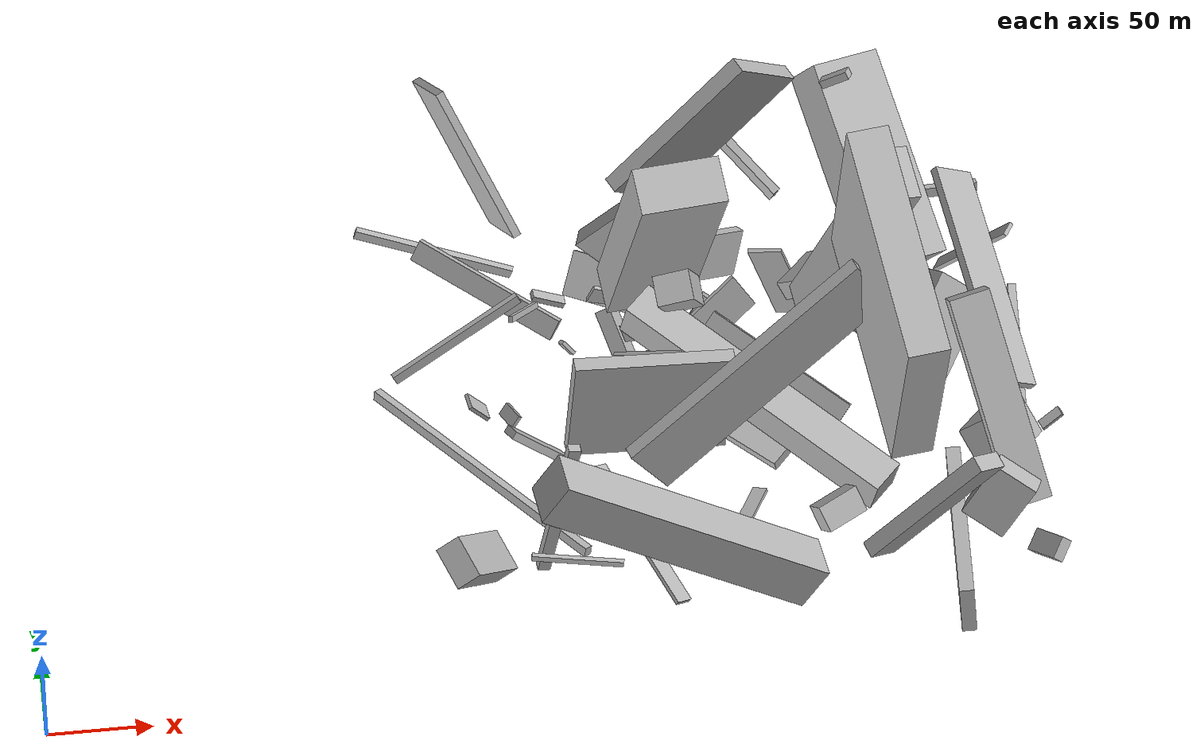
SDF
<sdf version="1.6">
 <world name="default">
  <model name="building_6">
   <static>0</static>
   <pose>400.58906750568445 201.3353379388965 90.74872359586328 1.720728777278763 -0.4512644913367839 1.7328811887067521</pose>
   <link name="link">
    <gravity>0</gravity>
    <pose>0 0 6.5 0 0 0</pose>
    <collision name="collision"><geometry><box><size>27 150 13</size></box></geometry></collision>
    <visual name="visual">
     <cast_shadows>0</cast_shadows>
     <geometry><box><size>27 150 13</size></box></geometry>
     <material>
      <script>
       <uri>model://HANNAS_wall/materials/scripts</uri>
       <uri>model://HANNAS_wall/materials/textures</uri>
       <name>vrc/HANNAS_wall</name>
      </script>
     </material>
    </visual>
   </link>
  </model>
  <model name="building_13">
   <static>0</static>
   <pose>404.9555528926048 105.27259282947267 109.17483107461244 0.40766137444998574 -0.06404478932884705 0.10300423446091946</pose>
   <link name="link">
    <gravity>0</gravity>
    <pose>0 0 55.0 0 0 0</pose>
    <collision name="collision"><geometry><box><size>20 117 110</size></box></geometry></collision>
    <visual name="visual">
     <cast_shadows>0</cast_shadows>
     <geometry><box><size>20 117 110</size></box></geometry>
     <material>
      <script>
       <uri>model://HANNAS_wall/materials/scripts</uri>
       <uri>model://HANNAS_wall/materials/textures</uri>
       <name>vrc/HANNAS_wall</name>
      </script>
     </material>
    </visual>
   </link>
  </model>
  <model name="building_17">
   <static>0</static>
   <pose>333.928652176697 247.26571172892753 14.19385974856086 -2.2846399041964043 0.8644635436970637 -2.609018774751286</pose>
   <link name="link">
    <gravity>0</gravity>
    <pose>0 0 2.0 0 0 0</pose>
    <collision name="collision"><geometry><box><size>23 9 4</size></box></geometry></collision>
    <visual name="visual">
     <cast_shadows>0</cast_shadows>
     <geometry><box><size>23 9 4</size></box></geometry>
     <material>
      <script>
       <uri>model://HANNAS_wall/materials/scripts</uri>
       <uri>model://HANNAS_wall/materials/textures</uri>
       <name>vrc/HANNAS_wall</name>
      </script>
     </material>
    </visual>
   </link>
  </model>
  <model name="building_19">
   <static>0</static>
   <pose>452.56117804282997 103.3349897625175 68.48537059684166 1.241224443477612 -0.9259921665959768 1.9693480970314834</pose>
   <link name="link">
    <gravity>0</gravity>
    <pose>0 0 10.0 0 0 0</pose>
    <collision name="collision"><geometry><box><size>104 14 20</size></box></geometry></collision>
    <visual name="visual">
     <cast_shadows>0</cast_shadows>
     <geometry><box><size>104 14 20</size></box></geometry>
     <material>
      <script>
       <uri>model://HANNAS_wall/materials/scripts</uri>
       <uri>model://HANNAS_wall/materials/textures</uri>
       <name>vrc/HANNAS_wall</name>
      </script>
     </material>
    </visual>
   </link>
  </model>
  <model name="building_23">
   <static>0</static>
   <pose>214.20025725259177 69.2321899512581 28.982133728075425 2.36427097274623 0.5834643408096105 -1.0614553253820256</pose>
   <link name="link">
    <gravity>0</gravity>
    <pose>0 0 6.5 0 0 0</pose>
    <collision name="collision"><geometry><box><size>21 50 13</size></box></geometry></collision>
    <visual name="visual">
     <cast_shadows>0</cast_shadows>
     <geometry><box><size>21 50 13</size></box></geometry>
     <material>
      <script>
       <uri>model://HANNAS_wall/materials/scripts</uri>
       <uri>model://HANNAS_wall/materials/textures</uri>
       <name>vrc/HANNAS_wall</name>
      </script>
     </material>
    </visual>
   </link>
  </model>
  <model name="building_29">
   <static>0</static>
   <pose>378.1255114581803 270.80634514704843 66.35772896245645 0.6940584296487194 -0.8190794882800703 -1.5986323340027746</pose>
   <link name="link">
    <gravity>0</gravity>
    <pose>0 0 18.0 0 0 0</pose>
    <collision name="collision"><geometry><box><size>22 4 36</size></box></geometry></collision>
    <visual name="visual">
     <cast_shadows>0</cast_shadows>
     <geometry><box><size>22 4 36</size></box></geometry>
     <material>
      <script>
       <uri>model://HANNAS_wall/materials/scripts</uri>
       <uri>model://HANNAS_wall/materials/textures</uri>
       <name>vrc/HANNAS_wall</name>
      </script>
     </material>
    </visual>
   </link>
  </model>
  <model name="building_31">
   <static>0</static>
   <pose>436.0858934883784 226.75639786986216 52.35880131767577 0.863082404299195 -0.13612266646796062 -2.7027658244045902</pose>
   <link name="link">
    <gravity>0</gravity>
    <pose>0 0 52.5 0 0 0</pose>
    <collision name="collision"><geometry><box><size>37 24 105</size></box></geometry></collision>
    <visual name="visual">
     <cast_shadows>0</cast_shadows>
     <geometry><box><size>37 24 105</size></box></geometry>
     <material>
      <script>
       <uri>model://HANNAS_wall/materials/scripts</uri>
       <uri>model://HANNAS_wall/materials/textures</uri>
       <name>vrc/HANNAS_wall</name>
      </script>
     </material>
    </visual>
   </link>
  </model>
  <model name="building_35">
   <static>0</static>
   <pose>290.3912804903219 187.12471028104437 114.11389787698812 1.561164324346291 -0.5289422882370757 1.7015595074946457</pose>
   <link name="link">
    <gravity>0</gravity>
    <pose>0 0 21.0 0 0 0</pose>
    <collision name="collision"><geometry><box><size>23 137 42</size></box></geometry></collision>
    <visual name="visual">
     <cast_shadows>0</cast_shadows>
     <geometry><box><size>23 137 42</size></box></geometry>
     <material>
      <script>
       <uri>model://HANNAS_wall/materials/scripts</uri>
       <uri>model://HANNAS_wall/materials/textures</uri>
       <name>vrc/HANNAS_wall</name>
      </script>
     </material>
    </visual>
   </link>
  </model>
  <model name="building_36">
   <static>0</static>
   <pose>300.21555406296636 44.38534926954047 67.16677585907131 -1.641209844108178 -0.5704789458199622 -3.01159917272137</pose>
   <link name="link">
    <gravity>0</gravity>
    <pose>0 0 11.5 0 0 0</pose>
    <collision name="collision"><geometry><box><size>150 23 23</size></box></geometry></collision>
    <visual name="visual">
     <cast_shadows>0</cast_shadows>
     <geometry><box><size>150 23 23</size></box></geometry>
     <material>
      <script>
       <uri>model://HANNAS_wall/materials/scripts</uri>
       <uri>model://HANNAS_wall/materials/textures</uri>
       <name>vrc/HANNAS_wall</name>
      </script>
     </material>
    </visual>
   </link>
  </model>
  <model name="building_39">
   <static>0</static>
   <pose>429.8933502145881 160.04105392337613 40.926628430205234 0.6483564356068493 -0.6909892722969965 -3.1372712939364686</pose>
   <link name="link">
    <gravity>0</gravity>
    <pose>0 0 24.5 0 0 0</pose>
    <collision name="collision"><geometry><box><size>28 17 49</size></box></geometry></collision>
    <visual name="visual">
     <cast_shadows>0</cast_shadows>
     <geometry><box><size>28 17 49</size></box></geometry>
     <material>
      <script>
       <uri>model://HANNAS_wall/materials/scripts</uri>
       <uri>model://HANNAS_wall/materials/textures</uri>
       <name>vrc/HANNAS_wall</name>
      </script>
     </material>
    </visual>
   </link>
  </model>
  <model name="building_43">
   <static>0</static>
   <pose>296.0174654424926 128.0221410166297 36.9947980773058 0.09256489169194941 0.05724867130260059 0.042920246653902726</pose>
   <link name="link">
    <gravity>0</gravity>
    <pose>0 0 29.0 0 0 0</pose>
    <collision name="collision"><geometry><box><size>77 8 58</size></box></geometry></collision>
    <visual name="visual">
     <cast_shadows>0</cast_shadows>
     <geometry><box><size>77 8 58</size></box></geometry>
     <material>
      <script>
       <uri>model://HANNAS_wall/materials/scripts</uri>
       <uri>model://HANNAS_wall/materials/textures</uri>
       <name>vrc/HANNAS_wall</name>
      </script>
     </material>
    </visual>
   </link>
  </model>
  <model name="building_46">
   <static>0</static>
   <pose>246.1859006012444 82.27732094601211 42.49364978558728 -2.5969373498946213 -1.377409207437211 -0.46187814407301775</pose>
   <link name="link">
    <gravity>0</gravity>
    <pose>0 0 3.0 0 0 0</pose>
    <collision name="collision"><geometry><box><size>82 5 6</size></box></geometry></collision>
    <visual name="visual">
     <cast_shadows>0</cast_shadows>
     <geometry><box><size>82 5 6</size></box></geometry>
     <material>
      <script>
       <uri>model://HANNAS_wall/materials/scripts</uri>
       <uri>model://HANNAS_wall/materials/textures</uri>
       <name>vrc/HANNAS_wall</name>
      </script>
     </material>
    </visual>
   </link>
  </model>
  <model name="building_51">
   <static>0</static>
   <pose>220.12619470832834 142.2658438100947 15.28995868736041 0.1738998977522765 -1.4495143823509187 0.4635368004001845</pose>
   <link name="link">
    <gravity>0</gravity>
    <pose>0 0 2.0 0 0 0</pose>
    <collision name="collision"><geometry><box><size>5 150 4</size></box></geometry></collision>
    <visual name="visual">
     <cast_shadows>0</cast_shadows>
     <geometry><box><size>5 150 4</size></box></geometry>
     <material>
      <script>
       <uri>model://HANNAS_wall/materials/scripts</uri>
       <uri>model://HANNAS_wall/materials/textures</uri>
       <name>vrc/HANNAS_wall</name>
      </script>
     </material>
    </visual>
   </link>
  </model>
  <model name="building_55">
   <static>0</static>
   <pose>444.9769608813528 117.61010649640107 16.124431301137065 -1.9831184103699608 -1.4688015950155175 -2.8189802086306406</pose>
   <link name="link">
    <gravity>0</gravity>
    <pose>0 0 48.5 0 0 0</pose>
    <collision name="collision"><geometry><box><size>27 7 97</size></box></geometry></collision>
    <visual name="visual">
     <cast_shadows>0</cast_shadows>
     <geometry><box><size>27 7 97</size></box></geometry>
     <material>
      <script>
       <uri>model://HANNAS_wall/materials/scripts</uri>
       <uri>model://HANNAS_wall/materials/textures</uri>
       <name>vrc/HANNAS_wall</name>
      </script>
     </material>
    </visual>
   </link>
  </model>
  <model name="building_56">
   <static>0</static>
   <pose>338.8735277007294 156.17363651808893 13.101742288615426 1.1998560978652764 -0.0684158469648663 2.323401888259988</pose>
   <link name="link">
    <gravity>0</gravity>
    <pose>0 0 11.5 0 0 0</pose>
    <collision name="collision"><geometry><box><size>63 6 23</size></box></geometry></collision>
    <visual name="visual">
     <cast_shadows>0</cast_shadows>
     <geometry><box><size>63 6 23</size></box></geometry>
     <material>
      <script>
       <uri>model://HANNAS_wall/materials/scripts</uri>
       <uri>model://HANNAS_wall/materials/textures</uri>
       <name>vrc/HANNAS_wall</name>
      </script>
     </material>
    </visual>
   </link>
  </model>
  <model name="building_57">
   <static>0</static>
   <pose>290.2434401939438 76.87162981255854 68.1823263896456 0.9214021146378613 -0.05669500444543594 1.845798415012286</pose>
   <link name="link">
    <gravity>0</gravity>
    <pose>0 0 70.0 0 0 0</pose>
    <collision name="collision"><geometry><box><size>7 32 140</size></box></geometry></collision>
    <visual name="visual">
     <cast_shadows>0</cast_shadows>
     <geometry><box><size>7 32 140</size></box></geometry>
     <material>
      <script>
       <uri>model://HANNAS_wall/materials/scripts</uri>
       <uri>model://HANNAS_wall/materials/textures</uri>
       <name>vrc/HANNAS_wall</name>
      </script>
     </material>
    </visual>
   </link>
  </model>
  <model name="building_60">
   <static>0</static>
   <pose>474.45323255626346 176.69282191344482 81.52367289497677 -0.999016910628857 -0.3879656692691506 1.7209854666668243</pose>
   <link name="link">
    <gravity>0</gravity>
    <pose>0 0 11.5 0 0 0</pose>
    <collision name="collision"><geometry><box><size>118 4 23</size></box></geometry></collision>
    <visual name="visual">
     <cast_shadows>0</cast_shadows>
     <geometry><box><size>118 4 23</size></box></geometry>
     <material>
      <script>
       <uri>model://HANNAS_wall/materials/scripts</uri>
       <uri>model://HANNAS_wall/materials/textures</uri>
       <name>vrc/HANNAS_wall</name>
      </script>
     </material>
    </visual>
   </link>
  </model>
  <model name="building_62">
   <static>0</static>
   <pose>319.1479844791854 175.08101974954377 81.36379476337575 0.43508069423318907 -0.8158266151248662 -2.0156602245478727</pose>
   <link name="link">
    <gravity>0</gravity>
    <pose>0 0 7.5 0 0 0</pose>
    <collision name="collision"><geometry><box><size>25 18 15</size></box></geometry></collision>
    <visual name="visual">
     <cast_shadows>0</cast_shadows>
     <geometry><box><size>25 18 15</size></box></geometry>
     <material>
      <script>
       <uri>model://HANNAS_wall/materials/scripts</uri>
       <uri>model://HANNAS_wall/materials/textures</uri>
       <name>vrc/HANNAS_wall</name>
      </script>
     </material>
    </visual>
   </link>
  </model>
  <model name="building_65">
   <static>0</static>
   <pose>245.27968948636106 156.21141487440704 19.072886363960613 -1.2584742352521032 -0.7144566553594044 -2.9978815820166878</pose>
   <link name="link">
    <gravity>0</gravity>
    <pose>0 0 4.5 0 0 0</pose>
    <collision name="collision"><geometry><box><size>35 4 9</size></box></geometry></collision>
    <visual name="visual">
     <cast_shadows>0</cast_shadows>
     <geometry><box><size>35 4 9</size></box></geometry>
     <material>
      <script>
       <uri>model://HANNAS_wall/materials/scripts</uri>
       <uri>model://HANNAS_wall/materials/textures</uri>
       <name>vrc/HANNAS_wall</name>
      </script>
     </material>
    </visual>
   </link>
  </model>
  <model name="building_68">
   <static>0</static>
   <pose>316.6888178402675 247.40681470743743 67.25540043720997 0.8476733651066017 0.12102196593709412 -1.864492438569003</pose>
   <link name="link">
    <gravity>0</gravity>
    <pose>0 0 11.5 0 0 0</pose>
    <collision name="collision"><geometry><box><size>10 68 23</size></box></geometry></collision>
    <visual name="visual">
     <cast_shadows>0</cast_shadows>
     <geometry><box><size>10 68 23</size></box></geometry>
     <material>
      <script>
       <uri>model://HANNAS_wall/materials/scripts</uri>
       <uri>model://HANNAS_wall/materials/textures</uri>
       <name>vrc/HANNAS_wall</name>
      </script>
     </material>
    </visual>
   </link>
  </model>
  <model name="building_72">
   <static>0</static>
   <pose>438.142857861029 260.384718097709 14.975354790825925 2.315928761138907 0.8499982514562878 -1.2585689782205938</pose>
   <link name="link">
    <gravity>0</gravity>
    <pose>0 0 16.0 0 0 0</pose>
    <collision name="collision"><geometry><box><size>4 15 32</size></box></geometry></collision>
    <visual name="visual">
     <cast_shadows>0</cast_shadows>
     <geometry><box><size>4 15 32</size></box></geometry>
     <material>
      <script>
       <uri>model://HANNAS_wall/materials/scripts</uri>
       <uri>model://HANNAS_wall/materials/textures</uri>
       <name>vrc/HANNAS_wall</name>
      </script>
     </material>
    </visual>
   </link>
  </model>
  <model name="building_78">
   <static>0</static>
   <pose>332.5279929357337 231.00481161606157 148.61462659088014 2.1173123108367644 -0.7890447882388395 0.11941091168303905</pose>
   <link name="link">
    <gravity>0</gravity>
    <pose>0 0 4.0 0 0 0</pose>
    <collision name="collision"><geometry><box><size>88 56 8</size></box></geometry></collision>
    <visual name="visual">
     <cast_shadows>0</cast_shadows>
     <geometry><box><size>88 56 8</size></box></geometry>
     <material>
      <script>
       <uri>model://HANNAS_wall/materials/scripts</uri>
       <uri>model://HANNAS_wall/materials/textures</uri>
       <name>vrc/HANNAS_wall</name>
      </script>
     </material>
    </visual>
   </link>
  </model>
  <model name="building_80">
   <static>0</static>
   <pose>342.00814851752807 265.33678284825453 36.62615904958547 1.4629560209450634 0.3489393606156517 0.5674443058107668</pose>
   <link name="link">
    <gravity>0</gravity>
    <pose>0 0 2.5 0 0 0</pose>
    <collision name="collision"><geometry><box><size>40 24 5</size></box></geometry></collision>
    <visual name="visual">
     <cast_shadows>0</cast_shadows>
     <geometry><box><size>40 24 5</size></box></geometry>
     <material>
      <script>
       <uri>model://HANNAS_wall/materials/scripts</uri>
       <uri>model://HANNAS_wall/materials/textures</uri>
       <name>vrc/HANNAS_wall</name>
      </script>
     </material>
    </visual>
   </link>
  </model>
  <model name="building_83">
   <static>0</static>
   <pose>275.3528814069554 185.18643013811473 33.21021069068483 -2.728132658963545 0.2790925058646908 3.000048167491507</pose>
   <link name="link">
    <gravity>0</gravity>
    <pose>0 0 9.5 0 0 0</pose>
    <collision name="collision"><geometry><box><size>7 49 19</size></box></geometry></collision>
    <visual name="visual">
     <cast_shadows>0</cast_shadows>
     <geometry><box><size>7 49 19</size></box></geometry>
     <material>
      <script>
       <uri>model://HANNAS_wall/materials/scripts</uri>
       <uri>model://HANNAS_wall/materials/textures</uri>
       <name>vrc/HANNAS_wall</name>
      </script>
     </material>
    </visual>
   </link>
  </model>
  <model name="building_86">
   <static>0</static>
   <pose>492.8375286723758 241.75348807334433 19.611768134551305 -1.8711729267823514 -0.05039741963288452 3.0851920414834586</pose>
   <link name="link">
    <gravity>0</gravity>
    <pose>0 0 44.5 0 0 0</pose>
    <collision name="collision"><geometry><box><size>4 7 89</size></box></geometry></collision>
    <visual name="visual">
     <cast_shadows>0</cast_shadows>
     <geometry><box><size>4 7 89</size></box></geometry>
     <material>
      <script>
       <uri>model://HANNAS_wall/materials/scripts</uri>
       <uri>model://HANNAS_wall/materials/textures</uri>
       <name>vrc/HANNAS_wall</name>
      </script>
     </material>
    </visual>
   </link>
  </model>
  <model name="building_90">
   <static>0</static>
   <pose>351.9747597941083 146.1656772565706 39.75339185367905 -0.15371312838684487 -0.3069545011999567 2.4450929931727026</pose>
   <link name="link">
    <gravity>0</gravity>
    <pose>0 0 9.0 0 0 0</pose>
    <collision name="collision"><geometry><box><size>150 19 18</size></box></geometry></collision>
    <visual name="visual">
     <cast_shadows>0</cast_shadows>
     <geometry><box><size>150 19 18</size></box></geometry>
     <material>
      <script>
       <uri>model://HANNAS_wall/materials/scripts</uri>
       <uri>model://HANNAS_wall/materials/textures</uri>
       <name>vrc/HANNAS_wall</name>
      </script>
     </material>
    </visual>
   </link>
  </model>
  <model name="building_94">
   <static>0</static>
   <pose>406.5820847072131 244.6084304719927 27.395730181847416 -0.10521687678296962 -1.2677664574961953 1.8873017089853714</pose>
   <link name="link">
    <gravity>0</gravity>
    <pose>0 0 2.0 0 0 0</pose>
    <collision name="collision"><geometry><box><size>21 14 4</size></box></geometry></collision>
    <visual name="visual">
     <cast_shadows>0</cast_shadows>
     <geometry><box><size>21 14 4</size></box></geometry>
     <material>
      <script>
       <uri>model://HANNAS_wall/materials/scripts</uri>
       <uri>model://HANNAS_wall/materials/textures</uri>
       <name>vrc/HANNAS_wall</name>
      </script>
     </material>
    </visual>
   </link>
  </model>
  <model name="building_96">
   <static>0</static>
   <pose>406.0149016390091 272.9049517164934 133.8258325949904 -1.8844256927006988 0.9757344482104306 -0.6783378335128332</pose>
   <link name="link">
    <gravity>0</gravity>
    <pose>0 0 3.0 0 0 0</pose>
    <collision name="collision"><geometry><box><size>4 15 6</size></box></geometry></collision>
    <visual name="visual">
     <cast_shadows>0</cast_shadows>
     <geometry><box><size>4 15 6</size></box></geometry>
     <material>
      <script>
       <uri>model://HANNAS_wall/materials/scripts</uri>
       <uri>model://HANNAS_wall/materials/textures</uri>
       <name>vrc/HANNAS_wall</name>
      </script>
     </material>
    </visual>
   </link>
  </model>
  <model name="building_103">
   <static>0</static>
   <pose>215.97435098452388 236.56566744913596 19.502902747270486 1.4875813730354484 1.094783507863908 0.15075283354431643</pose>
   <link name="link">
    <gravity>0</gravity>
    <pose>0 0 1.5 0 0 0</pose>
    <collision name="collision"><geometry><box><size>5 73 3</size></box></geometry></collision>
    <visual name="visual">
     <cast_shadows>0</cast_shadows>
     <geometry><box><size>5 73 3</size></box></geometry>
     <material>
      <script>
       <uri>model://HANNAS_wall/materials/scripts</uri>
       <uri>model://HANNAS_wall/materials/textures</uri>
       <name>vrc/HANNAS_wall</name>
      </script>
     </material>
    </visual>
   </link>
  </model>
  <model name="building_108">
   <static>0</static>
   <pose>356.9067125419104 226.50817693666943 44.644277937698284 2.0913951216197666 -0.1226315140104021 -1.1712604993094586</pose>
   <link name="link">
    <gravity>0</gravity>
    <pose>0 0 19.0 0 0 0</pose>
    <collision name="collision"><geometry><box><size>2 23 38</size></box></geometry></collision>
    <visual name="visual">
     <cast_shadows>0</cast_shadows>
     <geometry><box><size>2 23 38</size></box></geometry>
     <material>
      <script>
       <uri>model://HANNAS_wall/materials/scripts</uri>
       <uri>model://HANNAS_wall/materials/textures</uri>
       <name>vrc/HANNAS_wall</name>
      </script>
     </material>
    </visual>
   </link>
  </model>
  <model name="building_123">
   <static>0</static>
   <pose>208.94258206536847 278.0553536204156 37.29373751396081 0.2306664495095015 0.2746253004959728 -0.171141193777441</pose>
   <link name="link">
    <gravity>0</gravity>
    <pose>0 0 3.0 0 0 0</pose>
    <collision name="collision"><geometry><box><size>80 3 6</size></box></geometry></collision>
    <visual name="visual">
     <cast_shadows>0</cast_shadows>
     <geometry><box><size>80 3 6</size></box></geometry>
     <material>
      <script>
       <uri>model://HANNAS_wall/materials/scripts</uri>
       <uri>model://HANNAS_wall/materials/textures</uri>
       <name>vrc/HANNAS_wall</name>
      </script>
     </material>
    </visual>
   </link>
  </model>
  <model name="building_125">
   <static>0</static>
   <pose>478.6075398012589 267.7581079567554 24.59421152518495 0.8508166657379588 0.21125593407027843 -2.148818592308173</pose>
   <link name="link">
    <gravity>0</gravity>
    <pose>0 0 1.0 0 0 0</pose>
    <collision name="collision"><geometry><box><size>8 62 2</size></box></geometry></collision>
    <visual name="visual">
     <cast_shadows>0</cast_shadows>
     <geometry><box><size>8 62 2</size></box></geometry>
     <material>
      <script>
       <uri>model://HANNAS_wall/materials/scripts</uri>
       <uri>model://HANNAS_wall/materials/textures</uri>
       <name>vrc/HANNAS_wall</name>
      </script>
     </material>
    </visual>
   </link>
  </model>
  <model name="building_127">
   <static>0</static>
   <pose>395.5986446505686 37.85233918728768 41.63766256067301 0.5431941487980706 0.4133142498879904 0.6769648598533967</pose>
   <link name="link">
    <gravity>0</gravity>
    <pose>0 0 40.0 0 0 0</pose>
    <collision name="collision"><geometry><box><size>18 8 80</size></box></geometry></collision>
    <visual name="visual">
     <cast_shadows>0</cast_shadows>
     <geometry><box><size>18 8 80</size></box></geometry>
     <material>
      <script>
       <uri>model://HANNAS_wall/materials/scripts</uri>
       <uri>model://HANNAS_wall/materials/textures</uri>
       <name>vrc/HANNAS_wall</name>
      </script>
     </material>
    </visual>
   </link>
  </model>
  <model name="building_130">
   <static>0</static>
   <pose>268.8143486315505 220.45071148716886 19.99963267559566 1.0465834248901786 0.3572629992207802 2.2276456979689834</pose>
   <link name="link">
    <gravity>0</gravity>
    <pose>0 0 1.0 0 0 0</pose>
    <collision name="collision"><geometry><box><size>3 10 2</size></box></geometry></collision>
    <visual name="visual">
     <cast_shadows>0</cast_shadows>
     <geometry><box><size>3 10 2</size></box></geometry>
     <material>
      <script>
       <uri>model://HANNAS_wall/materials/scripts</uri>
       <uri>model://HANNAS_wall/materials/textures</uri>
       <name>vrc/HANNAS_wall</name>
      </script>
     </material>
    </visual>
   </link>
  </model>
  <model name="building_139">
   <static>0</static>
   <pose>476.48746775857666 43.63650636952486 22.495259672369674 -0.7871578904606622 -0.3979605285591976 -1.0447201863169966</pose>
   <link name="link">
    <gravity>0</gravity>
    <pose>0 0 5.5 0 0 0</pose>
    <collision name="collision"><geometry><box><size>20 6 11</size></box></geometry></collision>
    <visual name="visual">
     <cast_shadows>0</cast_shadows>
     <geometry><box><size>20 6 11</size></box></geometry>
     <material>
      <script>
       <uri>model://HANNAS_wall/materials/scripts</uri>
       <uri>model://HANNAS_wall/materials/textures</uri>
       <name>vrc/HANNAS_wall</name>
      </script>
     </material>
    </visual>
   </link>
  </model>
  <model name="building_140">
   <static>0</static>
   <pose>306.93976059499903 92.66404399118242 14.122139198330574 2.976133538285814 1.3404143827735773 -1.2954573609023188</pose>
   <link name="link">
    <gravity>0</gravity>
    <pose>0 0 4.5 0 0 0</pose>
    <collision name="collision"><geometry><box><size>6 3 9</size></box></geometry></collision>
    <visual name="visual">
     <cast_shadows>0</cast_shadows>
     <geometry><box><size>6 3 9</size></box></geometry>
     <material>
      <script>
       <uri>model://HANNAS_wall/materials/scripts</uri>
       <uri>model://HANNAS_wall/materials/textures</uri>
       <name>vrc/HANNAS_wall</name>
      </script>
     </material>
    </visual>
   </link>
  </model>
  <model name="building_144">
   <static>0</static>
   <pose>294.3157191370073 169.58224042696406 48.24256241875695 1.1074101405890242 -0.3930542119964331 1.1388675006061366</pose>
   <link name="link">
    <gravity>0</gravity>
    <pose>0 0 19.5 0 0 0</pose>
    <collision name="collision"><geometry><box><size>2 31 39</size></box></geometry></collision>
    <visual name="visual">
     <cast_shadows>0</cast_shadows>
     <geometry><box><size>2 31 39</size></box></geometry>
     <material>
      <script>
       <uri>model://HANNAS_wall/materials/scripts</uri>
       <uri>model://HANNAS_wall/materials/textures</uri>
       <name>vrc/HANNAS_wall</name>
      </script>
     </material>
    </visual>
   </link>
  </model>
  <model name="building_147">
   <static>0</static>
   <pose>357.79349342693786 184.04313259784251 8.267893130389549 0.4320102414583941 0.31539678764674456 -1.8885002933572548</pose>
   <link name="link">
    <gravity>0</gravity>
    <pose>0 0 1.0 0 0 0</pose>
    <collision name="collision"><geometry><box><size>27 8 2</size></box></geometry></collision>
    <visual name="visual">
     <cast_shadows>0</cast_shadows>
     <geometry><box><size>27 8 2</size></box></geometry>
     <material>
      <script>
       <uri>model://HANNAS_wall/materials/scripts</uri>
       <uri>model://HANNAS_wall/materials/textures</uri>
       <name>vrc/HANNAS_wall</name>
      </script>
     </material>
    </visual>
   </link>
  </model>
  <model name="building_150">
   <static>0</static>
   <pose>373.2791124348531 268.2818319701742 32.97975698330037 2.93442252204968 -0.38559679904868494 1.337831533449871</pose>
   <link name="link">
    <gravity>0</gravity>
    <pose>0 0 32.0 0 0 0</pose>
    <collision name="collision"><geometry><box><size>2 17 64</size></box></geometry></collision>
    <visual name="visual">
     <cast_shadows>0</cast_shadows>
     <geometry><box><size>2 17 64</size></box></geometry>
     <material>
      <script>
       <uri>model://HANNAS_wall/materials/scripts</uri>
       <uri>model://HANNAS_wall/materials/textures</uri>
       <name>vrc/HANNAS_wall</name>
      </script>
     </material>
    </visual>
   </link>
  </model>
  <model name="building_154">
   <static>0</static>
   <pose>291.48153952958046 81.4950932841726 22.616156971776796 0.8425378548082828 -1.0354936509152204 -0.30363331617591555</pose>
   <link name="link">
    <gravity>0</gravity>
    <pose>0 0 4.5 0 0 0</pose>
    <collision name="collision"><geometry><box><size>2 80 9</size></box></geometry></collision>
    <visual name="visual">
     <cast_shadows>0</cast_shadows>
     <geometry><box><size>2 80 9</size></box></geometry>
     <material>
      <script>
       <uri>model://HANNAS_wall/materials/scripts</uri>
       <uri>model://HANNAS_wall/materials/textures</uri>
       <name>vrc/HANNAS_wall</name>
      </script>
     </material>
    </visual>
   </link>
  </model>
  <model name="building_158">
   <static>0</static>
   <pose>366.2840520367249 32.523263616468284 67.61303957298685 -1.3615514193764635 -0.5934832151190367 -1.219599366671014</pose>
   <link name="link">
    <gravity>0</gravity>
    <pose>0 0 10.5 0 0 0</pose>
    <collision name="collision"><geometry><box><size>11 13 21</size></box></geometry></collision>
    <visual name="visual">
     <cast_shadows>0</cast_shadows>
     <geometry><box><size>11 13 21</size></box></geometry>
     <material>
      <script>
       <uri>model://HANNAS_wall/materials/scripts</uri>
       <uri>model://HANNAS_wall/materials/textures</uri>
       <name>vrc/HANNAS_wall</name>
      </script>
     </material>
    </visual>
   </link>
  </model>
  <model name="building_159">
   <static>0</static>
   <pose>394.7675844611054 142.79246433050557 32.582297045496524 0.9133118878325165 0.9171709827059548 -2.724454955627939</pose>
   <link name="link">
    <gravity>0</gravity>
    <pose>0 0 40.0 0 0 0</pose>
    <collision name="collision"><geometry><box><size>12 2 80</size></box></geometry></collision>
    <visual name="visual">
     <cast_shadows>0</cast_shadows>
     <geometry><box><size>12 2 80</size></box></geometry>
     <material>
      <script>
       <uri>model://HANNAS_wall/materials/scripts</uri>
       <uri>model://HANNAS_wall/materials/textures</uri>
       <name>vrc/HANNAS_wall</name>
      </script>
     </material>
    </visual>
   </link>
  </model>
  <model name="building_160">
   <static>0</static>
   <pose>276.03395126921396 272.09853692509733 25.119155550313813 1.7012089533715375 0.5981553523359364 1.2292079608098194</pose>
   <link name="link">
    <gravity>0</gravity>
    <pose>0 0 25.5 0 0 0</pose>
    <collision name="collision"><geometry><box><size>2 23 51</size></box></geometry></collision>
    <visual name="visual">
     <cast_shadows>0</cast_shadows>
     <geometry><box><size>2 23 51</size></box></geometry>
     <material>
      <script>
       <uri>model://HANNAS_wall/materials/scripts</uri>
       <uri>model://HANNAS_wall/materials/textures</uri>
       <name>vrc/HANNAS_wall</name>
      </script>
     </material>
    </visual>
   </link>
  </model>
  <model name="building_166">
   <static>0</static>
   <pose>414.4525767989069 203.74756490682267 31.346265402120547 -1.302885882376064 0.7050559523177102 0.49533578517045335</pose>
   <link name="link">
    <gravity>0</gravity>
    <pose>0 0 1.0 0 0 0</pose>
    <collision name="collision"><geometry><box><size>66 4 2</size></box></geometry></collision>
    <visual name="visual">
     <cast_shadows>0</cast_shadows>
     <geometry><box><size>66 4 2</size></box></geometry>
     <material>
      <script>
       <uri>model://HANNAS_wall/materials/scripts</uri>
       <uri>model://HANNAS_wall/materials/textures</uri>
       <name>vrc/HANNAS_wall</name>
      </script>
     </material>
    </visual>
   </link>
  </model>
  <model name="building_176">
   <static>0</static>
   <pose>473.14320708289165 117.93135378315355 22.808705262793417 0.7053616450708021 -0.28845730094115796 -2.105242596767296</pose>
   <link name="link">
    <gravity>0</gravity>
    <pose>0 0 11.5 0 0 0</pose>
    <collision name="collision"><geometry><box><size>30 23 23</size></box></geometry></collision>
    <visual name="visual">
     <cast_shadows>0</cast_shadows>
     <geometry><box><size>30 23 23</size></box></geometry>
     <material>
      <script>
       <uri>model://HANNAS_wall/materials/scripts</uri>
       <uri>model://HANNAS_wall/materials/textures</uri>
       <name>vrc/HANNAS_wall</name>
      </script>
     </material>
    </visual>
   </link>
  </model>
  <model name="building_187">
   <static>0</static>
   <pose>266.5103163990457 273.8679349794142 8.78891623882705 3.1260777363130727 -0.3783043868570296 -3.123280435309285</pose>
   <link name="link">
    <gravity>0</gravity>
    <pose>0 0 1.5 0 0 0</pose>
    <collision name="collision"><geometry><box><size>17 6 3</size></box></geometry></collision>
    <visual name="visual">
     <cast_shadows>0</cast_shadows>
     <geometry><box><size>17 6 3</size></box></geometry>
     <material>
      <script>
       <uri>model://HANNAS_wall/materials/scripts</uri>
       <uri>model://HANNAS_wall/materials/textures</uri>
       <name>vrc/HANNAS_wall</name>
      </script>
     </material>
    </visual>
   </link>
  </model>
  <model name="building_190">
   <static>0</static>
   <pose>329.07383684308115 72.62883942727599 13.751696902457578 -2.6619817072383793 1.2545265191648498 -1.4392332708435636</pose>
   <link name="link">
    <gravity>0</gravity>
    <pose>0 0 35.5 0 0 0</pose>
    <collision name="collision"><geometry><box><size>2 7 71</size></box></geometry></collision>
    <visual name="visual">
     <cast_shadows>0</cast_shadows>
     <geometry><box><size>2 7 71</size></box></geometry>
     <material>
      <script>
       <uri>model://HANNAS_wall/materials/scripts</uri>
       <uri>model://HANNAS_wall/materials/textures</uri>
       <name>vrc/HANNAS_wall</name>
      </script>
     </material>
    </visual>
   </link>
  </model>
  <model name="building_192">
   <static>0</static>
   <pose>396.1762781853831 266.1847318339215 11.514508049817689 0.6008052576470053 0.07279256963286546 -2.3060432638562673</pose>
   <link name="link">
    <gravity>0</gravity>
    <pose>0 0 5.0 0 0 0</pose>
    <collision name="collision"><geometry><box><size>27 12 10</size></box></geometry></collision>
    <visual name="visual">
     <cast_shadows>0</cast_shadows>
     <geometry><box><size>27 12 10</size></box></geometry>
     <material>
      <script>
       <uri>model://HANNAS_wall/materials/scripts</uri>
       <uri>model://HANNAS_wall/materials/textures</uri>
       <name>vrc/HANNAS_wall</name>
      </script>
     </material>
    </visual>
   </link>
  </model>
  <model name="building_196">
   <static>0</static>
   <pose>424.75394590814994 233.62274748666917 5.3197645692569235 -2.945685085135501 -0.023169892068615538 2.18927689929544</pose>
   <link name="link">
    <gravity>0</gravity>
    <pose>0 0 1.0 0 0 0</pose>
    <collision name="collision"><geometry><box><size>74 16 2</size></box></geometry></collision>
    <visual name="visual">
     <cast_shadows>0</cast_shadows>
     <geometry><box><size>74 16 2</size></box></geometry>
     <material>
      <script>
       <uri>model://HANNAS_wall/materials/scripts</uri>
       <uri>model://HANNAS_wall/materials/textures</uri>
       <name>vrc/HANNAS_wall</name>
      </script>
     </material>
    </visual>
   </link>
  </model>
  <model name="building_197">
   <static>0</static>
   <pose>272.8299972607399 23.36795478862288 58.04421520403615 -1.4897126526046072 -0.28978495401557325 1.415007205886457</pose>
   <link name="link">
    <gravity>0</gravity>
    <pose>0 0 21.5 0 0 0</pose>
    <collision name="collision"><geometry><box><size>2 4 43</size></box></geometry></collision>
    <visual name="visual">
     <cast_shadows>0</cast_shadows>
     <geometry><box><size>2 4 43</size></box></geometry>
     <material>
      <script>
       <uri>model://HANNAS_wall/materials/scripts</uri>
       <uri>model://HANNAS_wall/materials/textures</uri>
       <name>vrc/HANNAS_wall</name>
      </script>
     </material>
    </visual>
   </link>
  </model>
  <model name="building_198">
   <static>0</static>
   <pose>490.3998485789897 136.3863357643117 21.524778372225114 0.3676628146314648 0.8522096114257965 0.624196605034041</pose>
   <link name="link">
    <gravity>0</gravity>
    <pose>0 0 6.0 0 0 0</pose>
    <collision name="collision"><geometry><box><size>2 5 12</size></box></geometry></collision>
    <visual name="visual">
     <cast_shadows>0</cast_shadows>
     <geometry><box><size>2 5 12</size></box></geometry>
     <material>
      <script>
       <uri>model://HANNAS_wall/materials/scripts</uri>
       <uri>model://HANNAS_wall/materials/textures</uri>
       <name>vrc/HANNAS_wall</name>
      </script>
     </material>
    </visual>
   </link>
  </model>
  <model name="building_199">
   <static>0</static>
   <pose>290.94620478176466 230.35742424899462 18.029396077899342 0.90398983027517 0.5349650426591642 0.9915930174761172</pose>
   <link name="link">
    <gravity>0</gravity>
    <pose>0 0 4.0 0 0 0</pose>
    <collision name="collision"><geometry><box><size>10 25 8</size></box></geometry></collision>
    <visual name="visual">
     <cast_shadows>0</cast_shadows>
     <geometry><box><size>10 25 8</size></box></geometry>
     <material>
      <script>
       <uri>model://HANNAS_wall/materials/scripts</uri>
       <uri>model://HANNAS_wall/materials/textures</uri>
       <name>vrc/HANNAS_wall</name>
      </script>
     </material>
    </visual>
   </link>
  </model>
  <model name="building_206">
   <static>0</static>
   <pose>318.7707220054531 224.66783992131172 20.584224405391602 0.47123565233831577 -0.4938421163157686 -2.2564436304927806</pose>
   <link name="link">
    <gravity>0</gravity>
    <pose>0 0 4.0 0 0 0</pose>
    <collision name="collision"><geometry><box><size>23 40 8</size></box></geometry></collision>
    <visual name="visual">
     <cast_shadows>0</cast_shadows>
     <geometry><box><size>23 40 8</size></box></geometry>
     <material>
      <script>
       <uri>model://HANNAS_wall/materials/scripts</uri>
       <uri>model://HANNAS_wall/materials/textures</uri>
       <name>vrc/HANNAS_wall</name>
      </script>
     </material>
    </visual>
   </link>
  </model>
  <model name="building_210">
   <static>0</static>
   <pose>382.7027294074562 149.75137314466625 22.134207545039036 1.5226108753013774 0.6682181745863891 0.4414007266502859</pose>
   <link name="link">
    <gravity>0</gravity>
    <pose>0 0 1.5 0 0 0</pose>
    <collision name="collision"><geometry><box><size>6 33 3</size></box></geometry></collision>
    <visual name="visual">
     <cast_shadows>0</cast_shadows>
     <geometry><box><size>6 33 3</size></box></geometry>
     <material>
      <script>
       <uri>model://HANNAS_wall/materials/scripts</uri>
       <uri>model://HANNAS_wall/materials/textures</uri>
       <name>vrc/HANNAS_wall</name>
      </script>
     </material>
    </visual>
   </link>
  </model>
  <model name="building_213">
   <static>0</static>
   <pose>235.7371805541062 197.31682118698086 4.874900733595729 -1.5697728611792445 -0.6674500947554731 -2.724437052668593</pose>
   <link name="link">
    <gravity>0</gravity>
    <pose>0 0 6.0 0 0 0</pose>
    <collision name="collision"><geometry><box><size>2 7 12</size></box></geometry></collision>
    <visual name="visual">
     <cast_shadows>0</cast_shadows>
     <geometry><box><size>2 7 12</size></box></geometry>
     <material>
      <script>
       <uri>model://HANNAS_wall/materials/scripts</uri>
       <uri>model://HANNAS_wall/materials/textures</uri>
       <name>vrc/HANNAS_wall</name>
      </script>
     </material>
    </visual>
   </link>
  </model>
  <model name="building_222">
   <static>0</static>
   <pose>450.515268470346 293.60240615638696 44.423675636639395 3.10500083060123 0.14038459860198296 1.595540933986176</pose>
   <link name="link">
    <gravity>0</gravity>
    <pose>0 0 2.5 0 0 0</pose>
    <collision name="collision"><geometry><box><size>4 65 5</size></box></geometry></collision>
    <visual name="visual">
     <cast_shadows>0</cast_shadows>
     <geometry><box><size>4 65 5</size></box></geometry>
     <material>
      <script>
       <uri>model://HANNAS_wall/materials/scripts</uri>
       <uri>model://HANNAS_wall/materials/textures</uri>
       <name>vrc/HANNAS_wall</name>
      </script>
     </material>
    </visual>
   </link>
  </model>
  <model name="building_226">
   <static>0</static>
   <pose>295.88359958041536 182.91512583289537 30.02867312977888 -0.04670850820178397 -0.9292951339081146 2.463888931975395</pose>
   <link name="link">
    <gravity>0</gravity>
    <pose>0 0 13.5 0 0 0</pose>
    <collision name="collision"><geometry><box><size>25 4 27</size></box></geometry></collision>
    <visual name="visual">
     <cast_shadows>0</cast_shadows>
     <geometry><box><size>25 4 27</size></box></geometry>
     <material>
      <script>
       <uri>model://HANNAS_wall/materials/scripts</uri>
       <uri>model://HANNAS_wall/materials/textures</uri>
       <name>vrc/HANNAS_wall</name>
      </script>
     </material>
    </visual>
   </link>
  </model>
  <model name="building_232">
   <static>0</static>
   <pose>317.7136430008238 238.90762303086763 29.844188447071215 -1.2504095030280558 -0.2616445087174354 1.5656923100414564</pose>
   <link name="link">
    <gravity>0</gravity>
    <pose>0 0 18.5 0 0 0</pose>
    <collision name="collision"><geometry><box><size>2 11 37</size></box></geometry></collision>
    <visual name="visual">
     <cast_shadows>0</cast_shadows>
     <geometry><box><size>2 11 37</size></box></geometry>
     <material>
      <script>
       <uri>model://HANNAS_wall/materials/scripts</uri>
       <uri>model://HANNAS_wall/materials/textures</uri>
       <name>vrc/HANNAS_wall</name>
      </script>
     </material>
    </visual>
   </link>
  </model>
  <model name="building_233">
   <static>0</static>
   <pose>221.84971059279164 200.96778570463272 8.584627771445229 1.7833999955864182 -0.6819538784325831 0.015943160960830302</pose>
   <link name="link">
    <gravity>0</gravity>
    <pose>0 0 4.5 0 0 0</pose>
    <collision name="collision"><geometry><box><size>2 15 9</size></box></geometry></collision>
    <visual name="visual">
     <cast_shadows>0</cast_shadows>
     <geometry><box><size>2 15 9</size></box></geometry>
     <material>
      <script>
       <uri>model://HANNAS_wall/materials/scripts</uri>
       <uri>model://HANNAS_wall/materials/textures</uri>
       <name>vrc/HANNAS_wall</name>
      </script>
     </material>
    </visual>
   </link>
  </model>
  <model name="building_234">
   <static>0</static>
   <pose>410.8100366625396 219.3579914922517 67.17484196342738 -0.24863262691650373 -1.201532581414873 2.1426941446374386</pose>
   <link name="link">
    <gravity>0</gravity>
    <pose>0 0 14.5 0 0 0</pose>
    <collision name="collision"><geometry><box><size>24 2 29</size></box></geometry></collision>
    <visual name="visual">
     <cast_shadows>0</cast_shadows>
     <geometry><box><size>24 2 29</size></box></geometry>
     <material>
      <script>
       <uri>model://HANNAS_wall/materials/scripts</uri>
       <uri>model://HANNAS_wall/materials/textures</uri>
       <name>vrc/HANNAS_wall</name>
      </script>
     </material>
    </visual>
   </link>
  </model>
  <model name="building_244">
   <static>0</static>
   <pose>218.6931983312509 256.6287042318185 121.35744712095965 1.0253008231886689 -0.30374063124957473 0.3531801967474146</pose>
   <link name="link">
    <gravity>0</gravity>
    <pose>0 0 24.5 0 0 0</pose>
    <collision name="collision"><geometry><box><size>4 80 49</size></box></geometry></collision>
    <visual name="visual">
     <cast_shadows>0</cast_shadows>
     <geometry><box><size>4 80 49</size></box></geometry>
     <material>
      <script>
       <uri>model://HANNAS_wall/materials/scripts</uri>
       <uri>model://HANNAS_wall/materials/textures</uri>
       <name>vrc/HANNAS_wall</name>
      </script>
     </material>
    </visual>
   </link>
  </model>
  <model name="building_247">
   <static>0</static>
   <pose>230.56990544376092 252.5086811876173 28.960346141604003 0.44268022253647926 -0.288336559043842 2.5635128486526764</pose>
   <link name="link">
    <gravity>0</gravity>
    <pose>0 0 5.5 0 0 0</pose>
    <collision name="collision"><geometry><box><size>80 4 11</size></box></geometry></collision>
    <visual name="visual">
     <cast_shadows>0</cast_shadows>
     <geometry><box><size>80 4 11</size></box></geometry>
     <material>
      <script>
       <uri>model://HANNAS_wall/materials/scripts</uri>
       <uri>model://HANNAS_wall/materials/textures</uri>
       <name>vrc/HANNAS_wall</name>
      </script>
     </material>
    </visual>
   </link>
  </model>
  <model name="building_255">
   <static>0</static>
   <pose>247.43479055966355 218.2875730039085 49.85203306600043 2.7211280507411555 -0.25466511547482473 -0.4606552705659567</pose>
   <link name="link">
    <gravity>0</gravity>
    <pose>0 0 1.5 0 0 0</pose>
    <collision name="collision"><geometry><box><size>2 30 3</size></box></geometry></collision>
    <visual name="visual">
     <cast_shadows>0</cast_shadows>
     <geometry><box><size>2 30 3</size></box></geometry>
     <material>
      <script>
       <uri>model://HANNAS_wall/materials/scripts</uri>
       <uri>model://HANNAS_wall/materials/textures</uri>
       <name>vrc/HANNAS_wall</name>
      </script>
     </material>
    </visual>
   </link>
  </model>
  <model name="building_257">
   <static>0</static>
   <pose>361.1149485968704 204.10936948751865 19.83142761883792 -1.127363246914568 -0.40440443981818497 -2.3907995802593036</pose>
   <link name="link">
    <gravity>0</gravity>
    <pose>0 0 4.5 0 0 0</pose>
    <collision name="collision"><geometry><box><size>40 14 9</size></box></geometry></collision>
    <visual name="visual">
     <cast_shadows>0</cast_shadows>
     <geometry><box><size>40 14 9</size></box></geometry>
     <material>
      <script>
       <uri>model://HANNAS_wall/materials/scripts</uri>
       <uri>model://HANNAS_wall/materials/textures</uri>
       <name>vrc/HANNAS_wall</name>
      </script>
     </material>
    </visual>
   </link>
  </model>
  <model name="building_259">
   <static>0</static>
   <pose>449.3174964785594 58.00551949352808 36.365723907262364 0.4605114861245805 0.15452099943517103 1.1735260734164858</pose>
   <link name="link">
    <gravity>0</gravity>
    <pose>0 0 16.0 0 0 0</pose>
    <collision name="collision"><geometry><box><size>11 23 32</size></box></geometry></collision>
    <visual name="visual">
     <cast_shadows>0</cast_shadows>
     <geometry><box><size>11 23 32</size></box></geometry>
     <material>
      <script>
       <uri>model://HANNAS_wall/materials/scripts</uri>
       <uri>model://HANNAS_wall/materials/textures</uri>
       <name>vrc/HANNAS_wall</name>
      </script>
     </material>
    </visual>
   </link>
  </model>
  <model name="building_261">
   <static>0</static>
   <pose>367.70547046622755 119.02972914101922 92.33577173777383 1.0473824952451922 0.5605201198823351 1.5434873932283204</pose>
   <link name="link">
    <gravity>0</gravity>
    <pose>0 0 8.0 0 0 0</pose>
    <collision name="collision"><geometry><box><size>18 2 16</size></box></geometry></collision>
    <visual name="visual">
     <cast_shadows>0</cast_shadows>
     <geometry><box><size>18 2 16</size></box></geometry>
     <material>
      <script>
       <uri>model://HANNAS_wall/materials/scripts</uri>
       <uri>model://HANNAS_wall/materials/textures</uri>
       <name>vrc/HANNAS_wall</name>
      </script>
     </material>
    </visual>
   </link>
  </model>
 </world>
</sdf>
